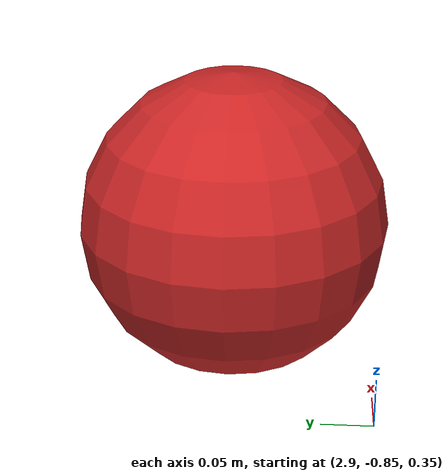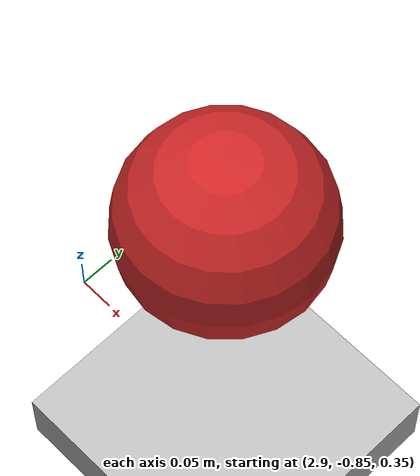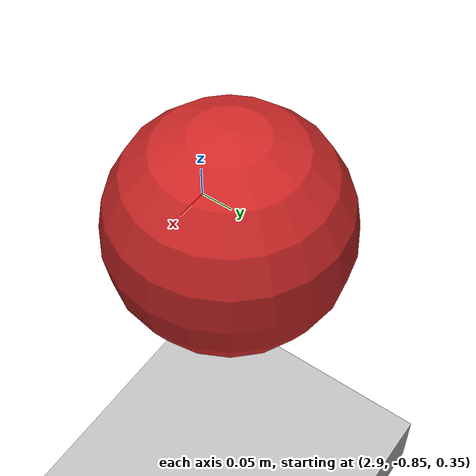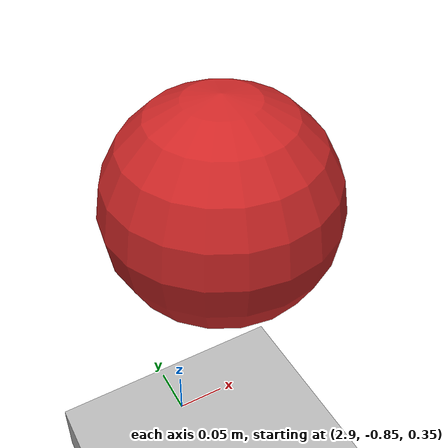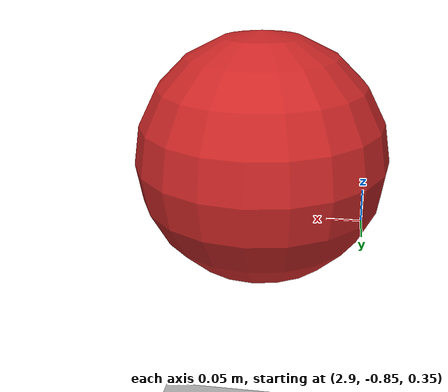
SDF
<sdf version="1.4">
 <world name="default">
  <scene>
   <ambient>0.3 0.3 0.3 1</ambient>
   <shadows>0</shadows>
   <grid>0</grid>
   <background>0.7 0.7 0.7 1</background>
  </scene>
  <physics type="ode">
   <gravity>0 0 -9.8</gravity>
   <ode>
    <solver><type>quick</type><iters>10</iters><sor>1.3</sor></solver>
    <constraints>
     <cfm>0</cfm>
     <erp>0.1</erp>
     <contact_max_correcting_vel>10</contact_max_correcting_vel>
     <contact_surface_layer>0.001</contact_surface_layer>
    </constraints>
   </ode>
   <real_time_update_rate>1000</real_time_update_rate>
   <max_step_size>0.001</max_step_size>
   <real_time_factor>1</real_time_factor>
  </physics>
  <include><uri>model://sun</uri></include>
  <model name="ground">
   <pose>1 2.3 -.1 0 0 0</pose>
   <static>1</static>
   <link name="ground">
    <collision name="ground_coll"><geometry><box><size>10 10 .1</size></box></geometry></collision>
    <visual name="ground_vis">
     <geometry><box><size>10 10 .1</size></box></geometry>
     <material><script><uri>file://scripts/course.material</uri><name>course</name></script></material>
    </visual>
   </link>
  </model>
  <model name="red_ball_1">
   <pose>3.03 -0.71 0.5 0 -0 0</pose>
   <link name="link">
    <inertial>
     <mass>1</mass>
     <inertia><ixx>1</ixx><ixy>0</ixy><ixz>0</ixz><iyy>1</iyy><iyz>0</iyz><izz>1</izz></inertia>
    </inertial>
    <collision name="collision"><geometry><sphere><radius>0.152159</radius></sphere></geometry></collision>
    <visual name="visual">
     <geometry><sphere><radius>0.152159</radius></sphere></geometry>
     <material>
      <script><uri>file://media/materials/scripts/gazebo.material</uri><name>Gazebo/Red</name></script>
     </material>
    </visual>
    <velocity_decay><linear>0</linear><angular>0</angular></velocity_decay>
    <gravity>0</gravity>
   </link>
   <static>0</static>
  </model>
 </world>
</sdf>
